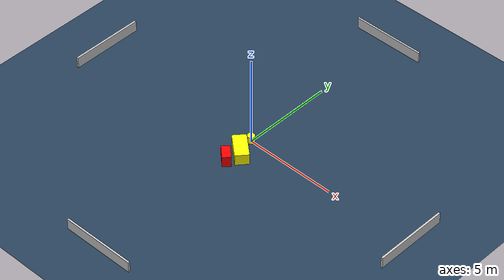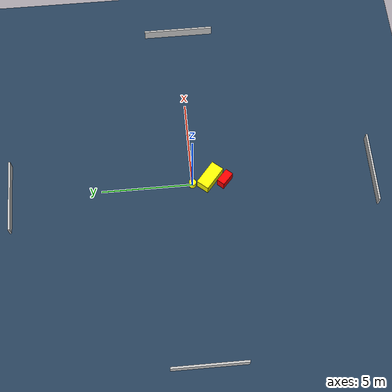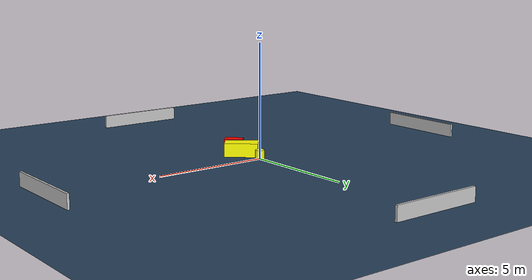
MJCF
<?xml version="1.0" ?>
<mujoco model="generated_environment">
  <option timestep="0.01" integrator="RK4" cone="elliptic"/>
  <default>
    <geom density="1"/>
  </default>
  <asset>
    <texture builtin="gradient" height="3072" name="skybox" rgb1="0.3 0.5 0.7" rgb2="0 0 0" type="skybox" width="512"/>
    <texture builtin="checker" height="300" name="groundplane" rgb1="0.2 0.3 0.4" rgb2="0.1 0.2 0.3" type="2d" width="300"/>
    <material name="groundplane" reflectance="0.2" texrepeat="5 5" texture="groundplane"/>
  </asset>
  <worldbody>
    <light dir="0 0 -1" directional="true" pos="0 0 1.5"/>
    <geom condim="3" friction="0.5 0.005 0.001" material="groundplane" name="floor" pos="0 0 0" size="0 0 0.05" type="plane"/>
    <body name="walls">
      <geom name="wall_1" condim="4" pos="-10.0 0.0 0.3" rgba="0.800000011920929 0.800000011920929 0.800000011920929 1.0" size="0.05 2.0 0.3" type="box"/>
      <geom name="wall_2" condim="4" pos="10.0 0.0 0.3" rgba="0.800000011920929 0.800000011920929 0.800000011920929 1.0" size="0.05 2.0 0.3" type="box"/>
      <geom name="wall_3" condim="4" pos="0.0 -10.0 0.3" rgba="0.800000011920929 0.800000011920929 0.800000011920929 1.0" size="2.0 0.05 0.3" type="box"/>
      <geom name="wall_4" condim="4" pos="0.0 10.0 0.3" rgba="0.800000011920929 0.800000011920929 0.800000011920929 1.0" size="2.0 0.05 0.3" type="box"/>
    </body>
    <body name="robot">
      <joint name="joint_x" type="slide" pos="0 0 0" axis="1 0 0"/>
      <joint name="joint_y" type="slide" pos="0 0 0" axis="0 1 0"/>
      <geom name="robot" type="cylinder" pos="0.0 0.0 0.2" size="0.2 0.2 0.0" mass="5.0" friction="1.0 0.005 0.0001" condim="4" rgba="1.0 1.0 0.0 1.0"/>
    </body>
    <body name="obstacle_1_movable">
      <geom name="obstacle_1_movable" condim="4" pos="0.2480586863863202 -0.9863214042901605 0.3" euler="0 0 49.65065031128535" friction="0.0 0.005 0.001" rgba="1.0 1.0 0.0 1.0" size="0.36274495345295066 0.7303447322414889 0.3" type="box" mass="0.1"/>
      <joint type="free"/>
    </body>
    <body name="obstacle_2_static">
      <geom name="obstacle_2_static" condim="4" pos="0.07233884548005443 -1.791942794181439 0.3" euler="0 0 137.4044262204807" friction="0.0 0.005 0.001" rgba="1.0 0.0 0.0 1.0" size="0.40890561589045693 0.22664360239602468 0.3" type="box"/>
    </body>
  </worldbody>
  <actuator>
    <motor name="actuator_x" joint="joint_x" gear="1" ctrlrange="-1 1"/>
    <motor name="actuator_y" joint="joint_y" gear="1" ctrlrange="-1 1"/>
  </actuator>
</mujoco>
